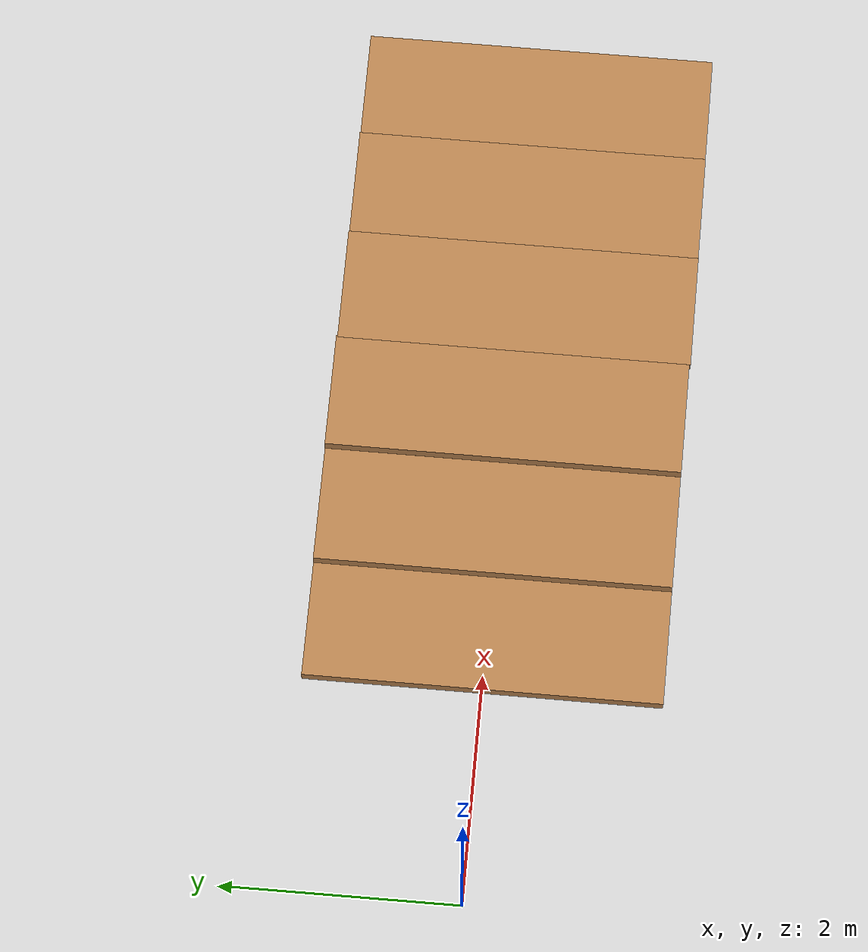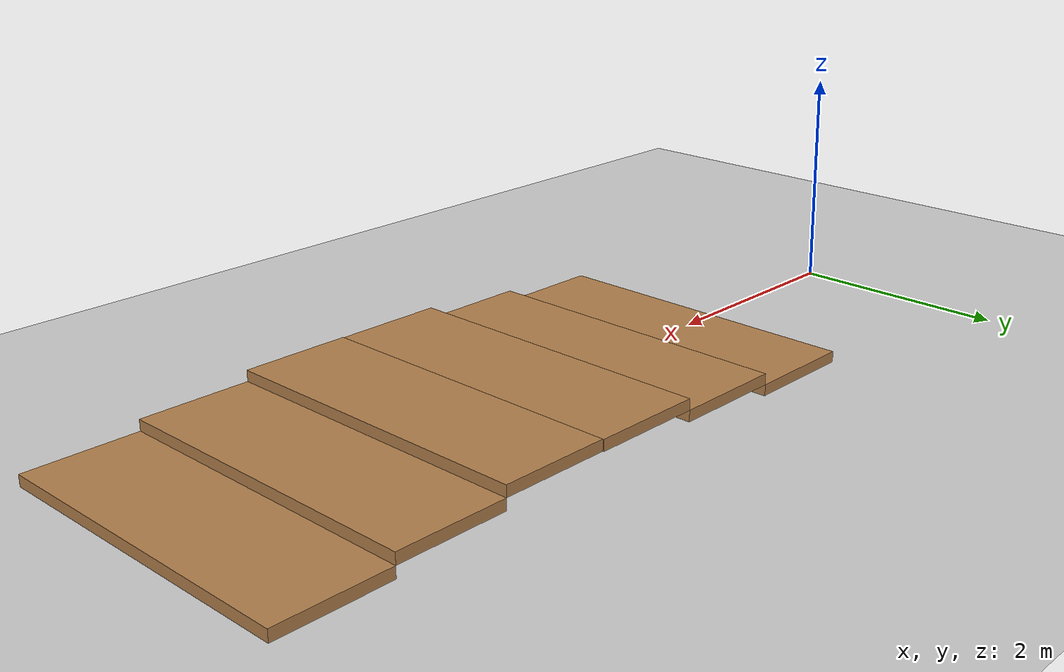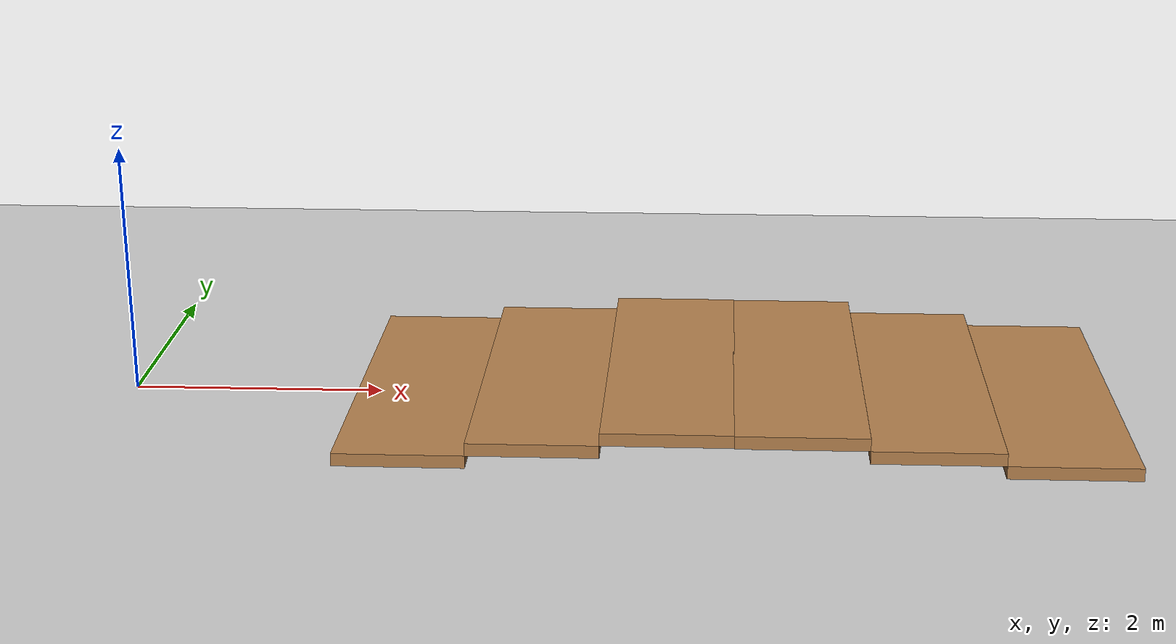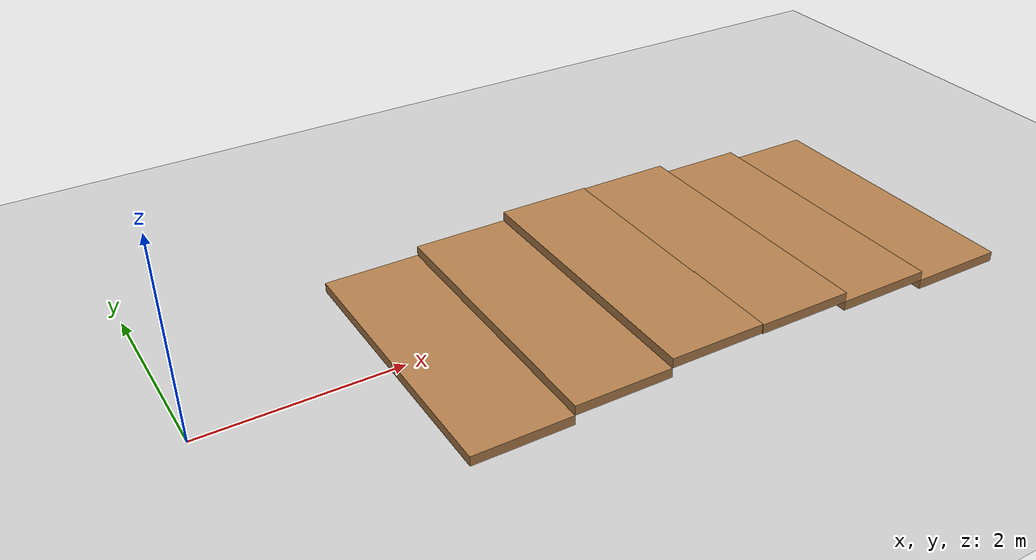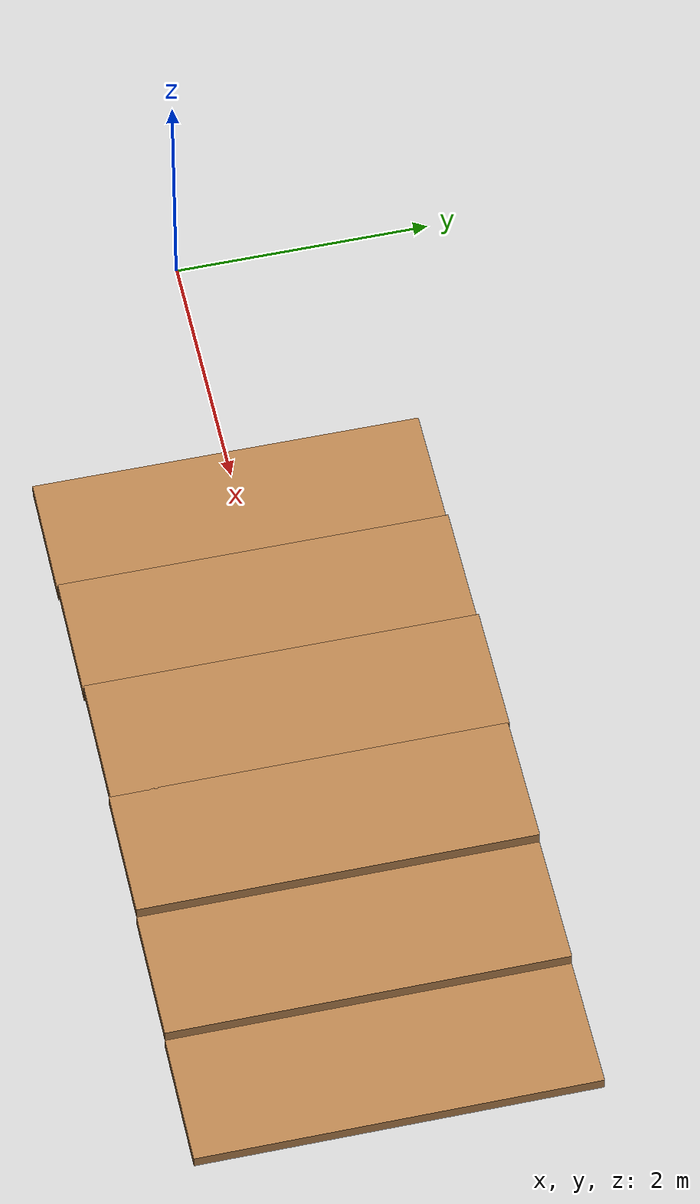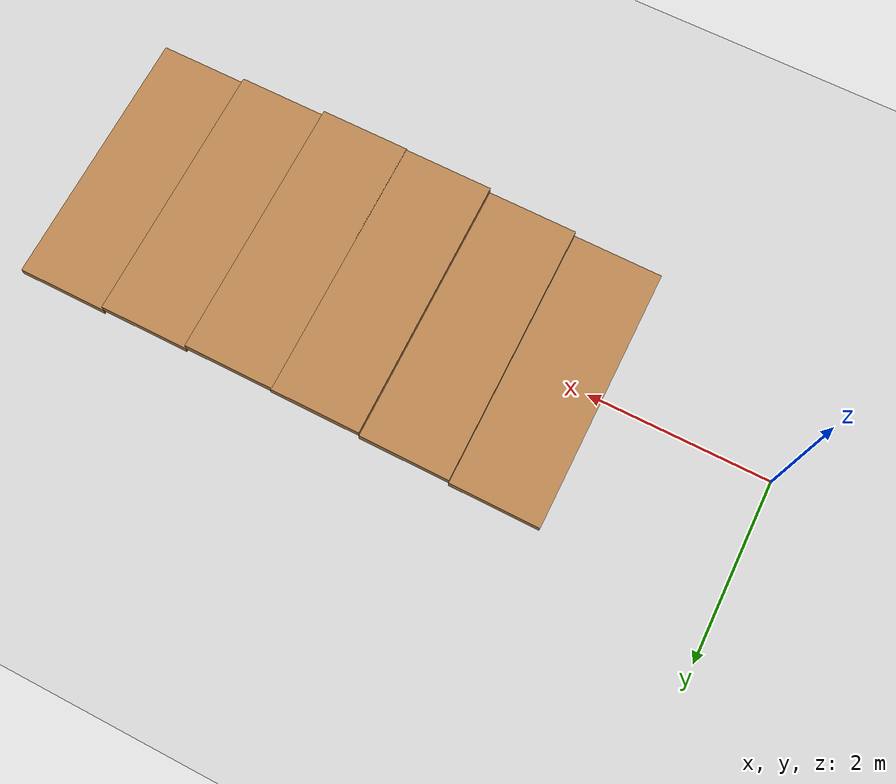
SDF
<sdf version="1.7">
 <world name="default">
  <light name="sun" type="directional">
   <pose>0 0 10 0 -0 0</pose>
   <diffuse>0.8 0.8 0.8 1</diffuse>
   <specular>0.2 0.2 0.2 1</specular>
   <attenuation>
    <range>1000</range>
    <constant>0.9</constant>
    <linear>0.01</linear>
    <quadratic>0.001</quadratic>
   </attenuation>
   <direction>-0.5 0.1 -0.9</direction>
   <spot><inner_angle>0</inner_angle><outer_angle>0</outer_angle><falloff>0</falloff></spot>
  </light>
  <model name="ground_plane">
   <static>1</static>
   <link name="link">
    <collision name="collision">
     <geometry><plane><normal>0 0 1</normal><size>100 100</size></plane></geometry>
     <surface>
      <contact><collide_bitmask>65535</collide_bitmask></contact>
      <friction><ode><mu>100</mu><mu2>50</mu2></ode></friction>
     </surface>
    </collision>
    <visual name="visual">
     <cast_shadows>0</cast_shadows>
     <geometry><plane><normal>0 0 1</normal><size>100 100</size></plane></geometry>
     <material>
      <script><uri>file://media/materials/scripts/gazebo.material</uri><name>Gazebo/Grey</name></script>
     </material>
    </visual>
   </link>
  </model>
  <gravity>0 0 -9.8</gravity>
  <magnetic_field>6e-06 2.3e-05 -4.2e-05</magnetic_field>
  <atmosphere type="adiabatic"/>
  <physics type="ode">
   <max_step_size>0.001</max_step_size>
   <real_time_factor>1</real_time_factor>
   <real_time_update_rate>1000</real_time_update_rate>
  </physics>
  <scene><ambient>0.4 0.4 0.4 1</ambient><background>0.7 0.7 0.7 1</background><shadows>1</shadows></scene>
  <spherical_coordinates>
   <surface_model>EARTH_WGS84</surface_model>
   <latitude_deg>0</latitude_deg>
   <longitude_deg>0</longitude_deg>
   <elevation>0</elevation>
   <heading_deg>0</heading_deg>
  </spherical_coordinates>
  <model name="stair_2">
   <pose>3.34947 -0.008756 0 0 -0 1.56818</pose>
   <link name="Stairs_2">
    <visual name="Stairs_2_Visual_0">
     <pose>0 1 0.05 0 -0 0</pose>
     <geometry><box><size>3 1 0.1</size></box></geometry>
     <material>
      <script><uri>file://media/materials/scripts/gazebo.material</uri><name>Gazebo/Wood</name></script>
      <ambient>1 1 1 1</ambient>
     </material>
     <meta><layer>0</layer></meta>
    </visual>
    <collision name="Stairs_2_Collision_0">
     <geometry><box><size>3 1 0.1</size></box></geometry>
     <pose>0 1 0.05 0 -0 0</pose>
    </collision>
    <visual name="Stairs_2_Visual_1">
     <pose>0 0 0.15 0 -0 0</pose>
     <geometry><box><size>3 1 0.1</size></box></geometry>
     <material>
      <script><uri>file://media/materials/scripts/gazebo.material</uri><name>Gazebo/Wood</name></script>
      <ambient>1 1 1 1</ambient>
     </material>
     <meta><layer>0</layer></meta>
    </visual>
    <collision name="Stairs_2_Collision_1">
     <geometry><box><size>3 1 0.1</size></box></geometry>
     <pose>0 0 0.15 0 -0 0</pose>
    </collision>
    <visual name="Stairs_2_Visual_2">
     <pose>0 -1 0.25 0 -0 0</pose>
     <geometry><box><size>3 1 0.1</size></box></geometry>
     <material>
      <script><uri>file://media/materials/scripts/gazebo.material</uri><name>Gazebo/Wood</name></script>
      <ambient>1 1 1 1</ambient>
     </material>
     <meta><layer>0</layer></meta>
    </visual>
    <collision name="Stairs_2_Collision_2">
     <geometry><box><size>3 1 0.1</size></box></geometry>
     <pose>0 -1 0.25 0 -0 0</pose>
    </collision>
   </link>
   <static>1</static>
  </model>
  <model name="stair_2_clone">
   <pose>6.34053 -0.024924 0 0 -0 -1.57205</pose>
   <link name="Stairs_2">
    <visual name="Stairs_2_Visual_0">
     <pose>0 1 0.05 0 -0 0</pose>
     <geometry><box><size>3 1 0.1</size></box></geometry>
     <material>
      <script><uri>file://media/materials/scripts/gazebo.material</uri><name>Gazebo/Wood</name></script>
      <ambient>1 1 1 1</ambient>
     </material>
     <meta><layer>0</layer></meta>
    </visual>
    <collision name="Stairs_2_Collision_0">
     <geometry><box><size>3 1 0.1</size></box></geometry>
     <pose>0 1 0.05 0 -0 0</pose>
    </collision>
    <visual name="Stairs_2_Visual_1">
     <pose>0 0 0.15 0 -0 0</pose>
     <geometry><box><size>3 1 0.1</size></box></geometry>
     <material>
      <script><uri>file://media/materials/scripts/gazebo.material</uri><name>Gazebo/Wood</name></script>
      <ambient>1 1 1 1</ambient>
     </material>
     <meta><layer>0</layer></meta>
    </visual>
    <collision name="Stairs_2_Collision_1">
     <geometry><box><size>3 1 0.1</size></box></geometry>
     <pose>0 0 0.15 0 -0 0</pose>
    </collision>
    <visual name="Stairs_2_Visual_2">
     <pose>0 -1 0.25 0 -0 0</pose>
     <geometry><box><size>3 1 0.1</size></box></geometry>
     <material>
      <script><uri>file://media/materials/scripts/gazebo.material</uri><name>Gazebo/Wood</name></script>
      <ambient>1 1 1 1</ambient>
     </material>
     <meta><layer>0</layer></meta>
    </visual>
    <collision name="Stairs_2_Collision_2">
     <geometry><box><size>3 1 0.1</size></box></geometry>
     <pose>0 -1 0.25 0 -0 0</pose>
    </collision>
   </link>
   <static>1</static>
  </model>
 </world>
</sdf>
